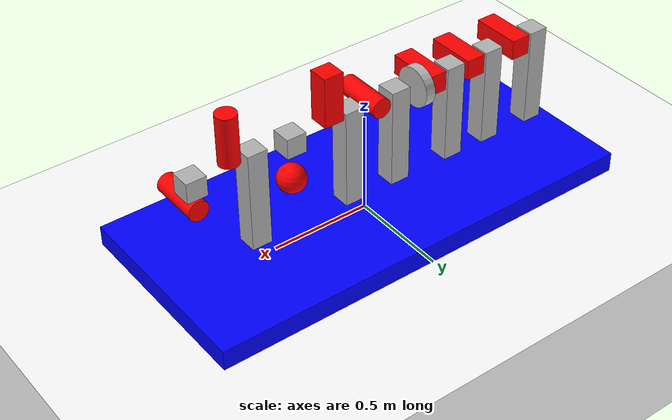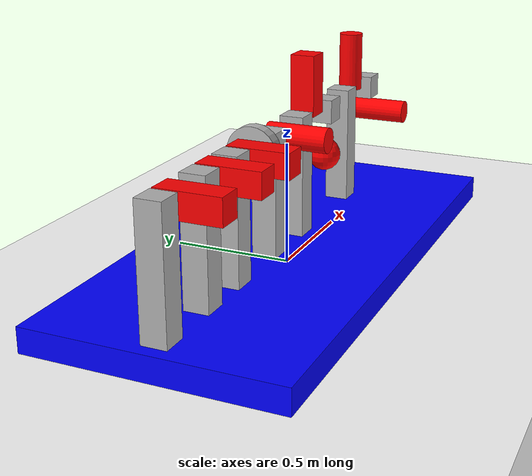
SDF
<?xml version="1.0" ?>
<sdf version="1.6">
  <world name="default">
    <physics name="fast" type="ignored">
      <real_time_factor>0</real_time_factor>
    </physics>

    <plugin
      filename="gz-sim-physics-system"
      name="gz::sim::systems::Physics">
    </plugin>
    <plugin
      filename="gz-sim-scene-broadcaster-system"
      name="gz::sim::systems::SceneBroadcaster">
    </plugin>

    <model name="ground_plane">
      <static>true</static>
      <link name="link">
        <pose>0 0 -0.5 0 0 0</pose>
        <collision name="collision">
          <geometry>
            <box>
              <size>100 100 1</size>
            </box>
          </geometry>
          <surface>
            <friction>
              <ode>
                <mu>100</mu>
                <mu2>50</mu2>
              </ode>
            </friction>
          </surface>
        </collision>
        <visual name="visual">
          <cast_shadows>false</cast_shadows>
          <geometry>
            <box>
              <size>100 100 1</size>
            </box>
          </geometry>
          <material>
            <ambient>1 1 1 1</ambient>
            <diffuse>1 1 1 1</diffuse>
            <specular>1 1 1 1</specular>
          </material>
        </visual>
      </link>
    </model>
    <model name="demo_joint_types">
        <!-- A Heavy base keeps the joints from falling over -->
        <link name="heavy_base">
            <!-- position the base such that the bottom touches the floor -->
            <pose>0 0 0.05 0 0 0</pose>
            <inertial>
                <mass>100</mass> <!-- kg -->
                <inertia>
                    <!-- (mass / 12) * (y*y + z*z) -->
                    <ixx>8.4167</ixx>
                    <ixy>0</ixy>
                    <ixz>0</ixz>
                    <!-- (mass / 12) * (x*x + z*z) -->
                    <iyy>40.417</iyy>
                    <iyz>0</iyz>
                    <!-- (mass / 12) * (y*y + x*x) -->
                    <izz>48.667</izz>
                </inertia>
            </inertial>
            <!-- Same geometry as visual -->
            <collision name="heavy_base_collision">
                <geometry>
                    <box>
                        <size>2.2 1 0.1</size>
                    </box>
                </geometry>
            </collision>
            <!-- Same geometry as collision -->
            <visual name="heavy_base_visual">
                <geometry>
                    <box>
                        <size>2.2 1 0.1</size>
                    </box>
                </geometry>
                <material>
                  <ambient>0 0 1 1</ambient>
                  <diffuse>0 0 1 1</diffuse>
                  <specular>0 0 1 1</specular>
                </material>
            </visual>
        </link>

        <!-- ****************************************
             revolute joint demo
             **************************************** -->
        <link name="revolute_base">
            <!-- Put the bottom of the child on top of the parent
                 z = 0.5 * revolute_base_sz_z + heavy_base_sz_z
                 x = put it near revolute label on heavy base
                 -->
            <pose >-.72 0 0.35 0 0 0</pose>
            <inertial>
                <inertia>
                    <!-- (mass / 12) * (y*y + z*z) -->
                    <ixx>0.021667</ixx>
                    <ixy>0</ixy>
                    <ixz>0</ixz>
                    <!-- (mass / 12) * (x*x + z*z) -->
                    <iyy>0.021667</iyy>
                    <iyz>0</iyz>
                    <!-- (mass / 12) * (y*y + x*x) -->
                    <izz>0.0016667</izz>
                </inertia>
            </inertial>
            <!-- Same geometry as visual -->
            <collision name="revolute_base_collision">
                <geometry>
                    <box>
                        <size>0.1 0.1 0.5</size>
                    </box>
                </geometry>
            </collision>
            <!-- Same geometry as collision -->
            <visual name="revolute_base_visual">
                <geometry>
                    <box>
                        <size>0.1 0.1 0.5</size>
                    </box>
                </geometry>
                <material>
                  <ambient>0.7 0.7 0.7 1</ambient>
                  <diffuse>0.7 0.7 0.7 1</diffuse>
                  <specular>0.7 0.7 0.7 1</specular>
                </material>
            </visual>
        </link>

        <joint name="revolute_base_to_heavy_base" type="fixed">
            <parent>heavy_base</parent>
            <child>revolute_base</child>
        </joint>

        <link name="revolute_arm">
            <pose >-.61 -0.075 0.55 0 0 0</pose>
            <inertial>
                <inertia>
                    <!-- (mass / 12) * (y*y + z*z) -->
                    <ixx>0.0060417</ixx>
                    <ixy>0</ixy>
                    <ixz>0</ixz>
                    <!-- (mass / 12) * (x*x + z*z) -->
                    <iyy>0.0016667</iyy>
                    <iyz>0</iyz>
                    <!-- (mass / 12) * (y*y + x*x) -->
                    <izz>0.0060417</izz>
                </inertia>
            </inertial>
            <!-- Same geometry as visual -->
            <collision name="revolute_arm_collision">
                <geometry>
                    <box>
                        <size>0.1 0.25 0.1</size>
                    </box>
                </geometry>
            </collision>
            <!-- Same geometry as collision -->
            <visual name="revolute_arm_visual">
                <geometry>
                    <box>
                        <size>0.1 0.25 0.1</size>
                    </box>
                </geometry>
                <material>
                  <ambient>1 0 0 1</ambient>
                  <diffuse>1 0 0 1</diffuse>
                  <specular>1 0 0 1</specular>
                </material>
            </visual>
        </link>

        <joint name="revolute_demo" type="revolute">
            <parent>revolute_base</parent>
            <child>revolute_arm</child>
            <axis>
                <xyz>1 0 0</xyz>
                <limit>
                  <lower>-3.14</lower>
                  <upper>3.14</upper>
                </limit>
            </axis>
            <!-- Move the joint to the size a bit to be more like an arm
                 y = 0.5 * relative_arm_sz_y - fudge(0.05) -->
            <pose>0 0.075 0 0 0 0</pose>
        </joint>

        <!-- ****************************************
             gearbox joint demo
             **************************************** -->
        <link name="gearbox_base">
            <!-- Put the bottom of the child on top of the parent
                 z = 0.5 * gearbox_base_sz_z + heavy_base_sz_z
                 x = put it near gearbox label on heavy base
                 -->
            <pose >-.49 0 0.35 0 0 0</pose>
            <inertial>
                <inertia>
                    <!-- (mass / 12) * (y*y + z*z) -->
                    <ixx>0.021667</ixx>
                    <ixy>0</ixy>
                    <ixz>0</ixz>
                    <!-- (mass / 12) * (x*x + z*z) -->
                    <iyy>0.021667</iyy>
                    <iyz>0</iyz>
                    <!-- (mass / 12) * (y*y + x*x) -->
                    <izz>0.0016667</izz>
                </inertia>
            </inertial>
            <!-- Same geometry as visual -->
            <collision name="gearbox_base_collision">
                <geometry>
                    <box>
                        <size>0.1 0.1 0.5</size>
                    </box>
                </geometry>
            </collision>
            <!-- Same geometry as collision -->
            <visual name="gearbox_base_visual">
                <geometry>
                    <box>
                        <size>0.1 0.1 0.5</size>
                    </box>
                </geometry>
                <material>
                  <ambient>0.7 0.7 0.7 1</ambient>
                  <diffuse>0.7 0.7 0.7 1</diffuse>
                  <specular>0.7 0.7 0.7 1</specular>
                </material>
            </visual>
        </link>

        <joint name="gearbox_base_to_heavy_base" type="fixed">
            <parent>heavy_base</parent>
            <child>gearbox_base</child>
        </joint>

        <!-- The reference body for the gearbox -->
        <link name="gearbox_input">
            <pose >-.38 -0.075 0.55 0 0 0</pose>
            <inertial>
                <inertia>
                    <!-- (mass / 12) * (y*y + z*z) -->
                    <ixx>0.0060417</ixx>
                    <ixy>0</ixy>
                    <ixz>0</ixz>
                    <!-- (mass / 12) * (x*x + z*z) -->
                    <iyy>0.0016667</iyy>
                    <iyz>0</iyz>
                    <!-- (mass / 12) * (y*y + x*x) -->
                    <izz>0.0060417</izz>
                </inertia>
            </inertial>
            <!-- Same geometry as visual -->
            <collision name="gearbox_input_collision">
                <geometry>
                    <box>
                        <size>0.1 0.25 0.1</size>
                    </box>
                </geometry>
            </collision>
            <!-- Same geometry as collision -->
            <visual name="gearbox_input_visual">
                <geometry>
                    <box>
                        <size>0.1 0.25 0.1</size>
                    </box>
                </geometry>
                <material>
                  <ambient>1 0 0 1</ambient>
                  <diffuse>1 0 0 1</diffuse>
                  <specular>1 0 0 1</specular>
                </material>
            </visual>
        </link>
        <!-- The output of the gearbox is a free spinning cylinder -->
        <link name="gearbox_output">
            <gravity>0</gravity>
            <pose >-.3 0.0 0.55 0 1.5708 0</pose>
            <inertial>
                <mass>0.1</mass> <!-- kg -->
                <inertia>
                    <!-- (mass / 12) * (3 * radius * radius + length * length) -->
                    <ixx>0.00027083</ixx>
                    <ixy>0</ixy>
                    <ixz>0</ixz>
                    <!-- (mass / 12) * (3 * radius * radius + length * length) -->
                    <iyy>0.00027083</iyy>
                    <iyz>0</iyz>
                    <!-- mass * radius * radius * 0.5 -->
                    <izz>0.0005</izz>
                </inertia>
            </inertial>
            <!-- Same geometry as visual -->
            <collision name="gearbox_output_collision">
                <geometry>
                    <cylinder>
                        <radius>0.1</radius>
                        <length>0.05</length>
                    </cylinder>
                </geometry>
            </collision>
            <!-- Same geometry as collision -->
            <visual name="gearbox_output_visual">
                <geometry>
                    <cylinder>
                        <radius>0.1</radius>
                        <length>0.05</length>
                    </cylinder>
                </geometry>
            </visual>
        </link>

        <!-- Gearbox links revolute joints, so create a couple revolute joints -->
        <joint name="gearbox_input_joint" type="revolute">
            <parent>gearbox_base</parent>
            <child>gearbox_input</child>
            <axis>
                <xyz>1 0 0</xyz>
            </axis>
            <pose>0 0.075 0 0 0 0</pose>
        </joint>
        <joint name="gearbox_output_joint" type="revolute">
            <parent>gearbox_base</parent>
            <child>gearbox_output</child>
            <axis>
                <xyz>0 0 1</xyz>
            </axis>
            <pose>0 0 0 0 0 0</pose>
        </joint>
        <joint name="gearbox_demo" type="gearbox">
            <parent>gearbox_input</parent>
            <child>gearbox_output</child>
            <gearbox_reference_body>gearbox_base</gearbox_reference_body>
            <gearbox_ratio>5</gearbox_ratio>
            <!-- input axis (relative to child) -->
            <axis>
                <xyz>0 0 1</xyz>
            </axis>
            <!-- output axis (relative to child) -->
            <axis2>
                <xyz>0 0 1</xyz>
                <limit>
                  <lower>-1e16</lower>
                  <upper>1e16</upper>
                </limit>
            </axis2>
        </joint>
        <!-- ****************************************
             revolute2 joint demo
             **************************************** -->
        <link name="revolute2_base">
            <!-- Put the bottom of the child on top of the parent-->
            <pose >-.17 0 0.35 0 0 0</pose>
            <inertial>
                <inertia>
                    <!-- (mass / 12) * (y*y + z*z) -->
                    <ixx>0.021667</ixx>
                    <ixy>0</ixy>
                    <ixz>0</ixz>
                    <!-- (mass / 12) * (x*x + z*z) -->
                    <iyy>0.021667</iyy>
                    <iyz>0</iyz>
                    <!-- (mass / 12) * (y*y + x*x) -->
                    <izz>0.0016667</izz>
                </inertia>
            </inertial>
            <!-- Same geometry as visual -->
            <collision name="revolute2_base_collision">
                <geometry>
                    <box>
                        <size>0.1 0.1 0.5</size>
                    </box>
                </geometry>
            </collision>
            <!-- Same geometry as collision -->
            <visual name="revolute2_base_visual">
                <geometry>
                    <box>
                        <size>0.1 0.1 0.5</size>
                    </box>
                </geometry>
                <material>
                  <ambient>0.7 0.7 0.7 1</ambient>
                  <diffuse>0.7 0.7 0.7 1</diffuse>
                  <specular>0.7 0.7 0.7 1</specular>
                </material>
            </visual>
        </link>

        <joint name="revolute2_base_to_heavy_base" type="fixed">
            <parent>heavy_base</parent>
            <child>revolute2_base</child>
        </joint>

        <link name="revolute2_arm">
            <!-- Put the arm near the top of the base
                 -->
            <pose >-.06 -0.075 0.55 1.5708 0 0</pose>
            <inertial>
                <inertia>
                    <!-- (mass / 12) * (3 * radius * radius + length * length) -->
                    <ixx>0.0058333</ixx>
                    <ixy>0</ixy>
                    <ixz>0</ixz>
                    <!-- (mass / 12) * (3 * radius * radius + length * length) -->
                    <iyy>0.0058333</iyy>
                    <iyz>0</iyz>
                    <!-- mass * radius * radius * 0.5 -->
                    <izz>0.00125</izz>
                </inertia>
                <!-- offset inertia as a trick to get movement from gravity -->
                <pose >-.1 -0.1 0.1 0 0 0</pose>
            </inertial>
            <!-- Same geometry as visual -->
            <collision name="revolute2_arm_collision">
                <geometry>
                    <cylinder>
                        <radius>0.05</radius>
                        <length>0.25</length>
                    </cylinder>
                </geometry>
            </collision>
            <!-- Same geometry as collision -->
            <visual name="revolute2_arm_visual">
                <geometry>
                    <cylinder>
                        <radius>0.05</radius>
                        <length>0.25</length>
                    </cylinder>
                </geometry>
                <material>
                  <ambient>1 0 0 1</ambient>
                  <diffuse>1 0 0 1</diffuse>
                  <specular>1 0 0 1</specular>
                </material>
            </visual>
        </link>

        <joint name="revolute2_demo" type="revolute2">
            <parent>revolute2_base</parent>
            <child>revolute2_arm</child>
            <axis>
                <xyz>1 0 0</xyz>
            </axis>
            <axis2>
                <xyz>0 1 0</xyz>
                <limit>
                  <lower>-1e16</lower>
                  <upper>1e16</upper>
                </limit>
            </axis2>
            <pose>0 0 -0.075  0 0 0</pose>
        </joint>
        <!-- ****************************************
             prismatic joint demo
             **************************************** -->
        <link name="prismatic_base">
            <!-- Put the bottom of base on top of the heavy base -->
            <pose >0.09 0 0.35 0 0 0</pose>
            <inertial>
                <inertia>
                    <!-- (mass / 12) * (y*y + z*z) -->
                    <ixx>0.021667</ixx>
                    <ixy>0</ixy>
                    <ixz>0</ixz>
                    <!-- (mass / 12) * (x*x + z*z) -->
                    <iyy>0.021667</iyy>
                    <iyz>0</iyz>
                    <!-- (mass / 12) * (y*y + x*x) -->
                    <izz>0.0016667</izz>
                </inertia>
            </inertial>
            <!-- Same geometry as visual -->
            <collision name="prismatic_base_collision">
                <geometry>
                    <box>
                        <size>0.1 0.1 0.5</size>
                    </box>
                </geometry>
            </collision>
            <!-- Same geometry as collision -->
            <visual name="prismatic_base_visual">
                <geometry>
                    <box>
                        <size>0.1 0.1 0.5</size>
                    </box>
                </geometry>
                <material>
                  <ambient>0.7 0.7 0.7 1</ambient>
                  <diffuse>0.7 0.7 0.7 1</diffuse>
                  <specular>0.7 0.7 0.7 1</specular>
                </material>
            </visual>
        </link>

        <joint name="prismatic_base_to_heavy_base" type="fixed">
            <parent>heavy_base</parent>
            <child>prismatic_base</child>
        </joint>

        <link name="prismatic_slide">
            <!-- Put the slide near the top of the base -->
            <pose >0.2 0 0.70 0 0 0</pose>
            <inertial>
                <inertia>
                    <!-- (mass / 12) * (y*y + z*z) -->
                    <ixx>0.0060417</ixx>
                    <ixy>0</ixy>
                    <ixz>0</ixz>
                    <!-- (mass / 12) * (x*x + z*z) -->
                    <iyy>0.0060417</iyy>
                    <iyz>0</iyz>
                    <!-- (mass / 12) * (y*y + x*x) -->
                    <izz>0.0016667</izz>
                </inertia>
            </inertial>
            <!-- Same geometry as visual -->
            <collision name="prismatic_slide_collision">
                <geometry>
                    <box>
                        <size>0.1 0.1 0.25</size>
                    </box>
                </geometry>
            </collision>
            <!-- Same geometry as collision -->
            <visual name="prismatic_slide_visual">
                <geometry>
                    <box>
                        <size>0.1 0.1 0.25</size>
                    </box>
                </geometry>
                <material>
                  <ambient>1 0 0 1</ambient>
                  <diffuse>1 0 0 1</diffuse>
                  <specular>1 0 0 1</specular>
                </material>
            </visual>
        </link>

        <joint name="prismatic_demo" type="prismatic">
            <parent>prismatic_base</parent>
            <child>prismatic_slide</child>
            <axis>
                <xyz>0 0 1</xyz>
                <!-- Make it springy to keep the demo moving -->
                <limit>
                    <lower>-0.25</lower>
                    <upper>0.25</upper>
                </limit>
                <dynamics>
                    <spring_stiffness>100</spring_stiffness>
                </dynamics>
            </axis>
        </joint>
        <!-- ****************************************
             ball joint demo
             **************************************** -->
        <link name="ball_socket">
            <!-- make the socket float in the sky -->
            <pose >0.4 0 0.55 0 0 0</pose>
            <inertial>
                <inertia>
                    <!-- (mass / 12) * (y*y + z*z) -->
                    <ixx>0.0016667</ixx>
                    <ixy>0</ixy>
                    <ixz>0</ixz>
                    <!-- (mass / 12) * (x*x + z*z) -->
                    <iyy>0.0016667</iyy>
                    <iyz>0</iyz>
                    <!-- (mass / 12) * (y*y + x*x) -->
                    <izz>0.0016667</izz>
                </inertia>
            </inertial>
            <!-- Same geometry as visual -->
            <collision name="ball_socket_collision">
                <geometry>
                    <box>
                        <size>0.1 0.1 0.1</size>
                    </box>
                </geometry>
            </collision>
            <!-- Same geometry as collision -->
            <visual name="ball_socket_visual">
                <geometry>
                    <box>
                        <size>0.1 0.1 0.1</size>
                    </box>
                </geometry>
                <material>
                  <ambient>0.7 0.7 0.7 1</ambient>
                  <diffuse>0.7 0.7 0.7 1</diffuse>
                  <specular>0.7 0.7 0.7 1</specular>
                </material>
            </visual>
        </link>

        <joint name="ball_socket_to_heavy_base" type="fixed">
            <parent>heavy_base</parent>
            <child>ball_socket</child>
        </joint>

        <link name="ball_ball">
            <!-- Put the ball just under the socket -->
            <pose >0.4 0 0.35 0 0 0</pose>
            <inertial>
                <inertia>
                    <!-- (2 * mass * radius * radius) / 5 -->
                    <ixx>0.00196</ixx>
                    <!-- fudge it a bit to get movement on two axis from gravity alone -->
                    <ixy>0.00</ixy>
                    <ixz>0.00</ixz>
                    <!-- (2 * mass * radius * radius) / 5 -->
                    <iyy>0.00196</iyy>
                    <iyz>0.00</iyz>
                    <!-- (2 * mass * radius * radius) / 5 -->
                    <izz>0.00196</izz>
                </inertia>
                <!-- offset interia as a trick to get movement from gravity -->
                <pose >0.1 -0.1 0.1 0 0 0</pose>
            </inertial>
            <!-- Same geometry as visual -->
            <collision name="ball_ball_collision">
                <geometry>
                    <sphere>
                        <radius>0.07</radius>
                    </sphere>
                </geometry>
            </collision>
            <!-- Same geometry as collision -->
            <visual name="ball_ball_visual">
                <geometry>
                    <sphere>
                        <radius>0.07</radius>
                    </sphere>
                </geometry>
                <material>
                  <ambient>1 0 0 1</ambient>
                  <diffuse>1 0 0 1</diffuse>
                  <specular>1 0 0 1</specular>
                </material>
            </visual>
        </link>

        <joint name="ball_demo" type="ball">
            <parent>ball_socket</parent>
            <child>ball_ball</child>
        </joint>

        <!-- ****************************************
             screw joint demo
             **************************************** -->
        <link name="screw_base">
            <!-- Put the bottom of base on top of the heavy base -->
            <pose >0.6 0 0.35 0 0 0</pose>
            <inertial>
                <inertia>
                    <!-- (mass / 12) * (y*y + z*z) -->
                    <ixx>0.021667</ixx>
                    <ixy>0</ixy>
                    <ixz>0</ixz>
                    <!-- (mass / 12) * (x*x + z*z) -->
                    <iyy>0.021667</iyy>
                    <iyz>0</iyz>
                    <!-- (mass / 12) * (y*y + x*x) -->
                    <izz>0.0016667</izz>
                </inertia>
            </inertial>
            <!-- Same geometry as visual -->
            <collision name="screw_base_collision">
                <geometry>
                    <box>
                        <size>0.1 0.1 0.5</size>
                    </box>
                </geometry>
            </collision>
            <!-- Same geometry as collision -->
            <visual name="screw_base_visual">
                <geometry>
                    <box>
                        <size>0.1 0.1 0.5</size>
                    </box>
                </geometry>
                <material>
                  <ambient>0.7 0.7 0.7 1</ambient>
                  <diffuse>0.7 0.7 0.7 1</diffuse>
                  <specular>0.7 0.7 0.7 1</specular>
                </material>
            </visual>
        </link>

        <joint name="screw_base_to_heavy_base" type="fixed">
            <parent>heavy_base</parent>
            <child>screw_base</child>
        </joint>

        <link name="screw_thread">
            <!-- Put the thread near the top of the base -->
            <pose >0.71 0 0.70 0 0 0</pose>
            <inertial>
                <inertia>
                    <!-- (mass / 12) * (3 * radius * radius + length * length) -->
                    <ixx>0.0058333</ixx>
                    <ixy>0</ixy>
                    <ixz>0</ixz>
                    <!-- (mass / 12) * (3 * radius * radius + length * length) -->
                    <iyy>0.0058333</iyy>
                    <iyz>0</iyz>
                    <!-- mass * radius * radius * 0.5 -->
                    <izz>0.00125</izz>
                </inertia>
            </inertial>
            <!-- Same geometry as visual -->
            <collision name="screw_thread_collision">
                <geometry>
                    <cylinder>
                        <radius>0.05</radius>
                        <length>0.25</length>
                    </cylinder>
                </geometry>
            </collision>
            <!-- Same geometry as collision -->
            <visual name="screw_thread_visual">
                <geometry>
                    <cylinder>
                        <radius>0.05</radius>
                        <length>0.25</length>
                    </cylinder>
                </geometry>
                <material>
                  <ambient>1 0 0 1</ambient>
                  <diffuse>1 0 0 1</diffuse>
                  <specular>1 0 0 1</specular>
                </material>
            </visual>
        </link>

        <joint name="screw_demo" type="screw">
            <parent>screw_base</parent>
            <child>screw_thread</child>
            <thread_pitch>20</thread_pitch>
            <axis>
                <xyz>0 0 1</xyz>
                <!-- Make it springy to keep the demo moving -->
                <dynamics>
                    <spring_stiffness>0.2</spring_stiffness>
                </dynamics>
                <limit>
                  <lower>-1e16</lower>
                  <upper>1e16</upper>
                </limit>
            </axis>
        </joint>

        <!-- ****************************************
             universal joint demo
             **************************************** -->
        <link name="universal_base">
            <!-- make the base float in the sky -->
            <pose >0.9 0 0.55 0 0 0</pose>
            <inertial>
                <inertia>
                    <!-- (mass / 12) * (y*y + z*z) -->
                    <ixx>0.0016667</ixx>
                    <ixy>0</ixy>
                    <ixz>0</ixz>
                    <!-- (mass / 12) * (x*x + z*z) -->
                    <iyy>0.0016667</iyy>
                    <iyz>0</iyz>
                    <!-- (mass / 12) * (y*y + x*x) -->
                    <izz>0.0016667</izz>
                </inertia>
            </inertial>
            <!-- Same geometry as visual -->
            <collision name="universal_base_collision">
                <geometry>
                    <box>
                        <size>0.1 0.1 0.1</size>
                    </box>
                </geometry>
            </collision>
            <!-- Same geometry as collision -->
            <visual name="universal_base_visual">
                <geometry>
                    <box>
                        <size>0.1 0.1 0.1</size>
                    </box>
                </geometry>
                <material>
                  <ambient>0.7 0.7 0.7 1</ambient>
                  <diffuse>0.7 0.7 0.7 1</diffuse>
                  <specular>0.7 0.7 0.7 1</specular>
                </material>
            </visual>
        </link>

        <joint name="universal_base_to_heavy_base" type="fixed">
            <parent>heavy_base</parent>
            <child>universal_base</child>
        </joint>

        <link name="universal_arm">
            <!-- Put the shaft just under the base -->
            <pose >0.9 -0.075 0.44 1.5708 0 0</pose>
            <inertial>
                <inertia>
                    <!-- (mass / 12) * (3 * radius * radius + length * length) -->
                    <ixx>0.0058333</ixx>
                    <ixy>0</ixy>
                    <ixz>0</ixz>
                    <!-- (mass / 12) * (3 * radius * radius + length * length) -->
                    <iyy>0.0058333</iyy>
                    <iyz>0</iyz>
                    <!-- mass * radius * radius * 0.5 -->
                    <izz>0.00125</izz>
                </inertia>
                <!-- offset interia as a trick to get movement from gravity -->
                <pose >-0.02 0.02 0 0 0 0</pose>
            </inertial>
            <!-- Same geometry as visual -->
            <collision name="universal_shaft_collision">
                <geometry>
                    <cylinder>
                        <radius>0.05</radius>
                        <length>0.25</length>
                    </cylinder>
                </geometry>
            </collision>
            <!-- Same geometry as collision -->
            <visual name="universal_shaft_visual">
                <geometry>
                    <cylinder>
                        <radius>0.05</radius>
                        <length>0.25</length>
                    </cylinder>
                </geometry>
                <material>
                  <ambient>1 0 0 1</ambient>
                  <diffuse>1 0 0 1</diffuse>
                  <specular>1 0 0 1</specular>
                </material>
            </visual>
        </link>

        <joint name="universal_demo" type="universal">
            <parent>universal_base</parent>
            <child>universal_arm</child>
            <pose>0 0 -0.075 0 0 0</pose>
            <axis>
              <xyz>1 0 0</xyz>
            </axis>
            <axis2>
              <xyz>0 1 0</xyz>
                <limit>
                  <lower>-1e16</lower>
                  <upper>1e16</upper>
                </limit>
            </axis2>
        </joint>

        <!-- ****************************************
             fixed joint demo
             **************************************** -->
        <link name="fixed_base">
            <!-- Put the bottom of base on top of the heavy base -->
            <pose >-1 0 0.35 0 0 0</pose>
            <inertial>
                <inertia>
                    <!-- (mass / 12) * (y*y + z*z) -->
                    <ixx>0.021667</ixx>
                    <ixy>0</ixy>
                    <ixz>0</ixz>
                    <!-- (mass / 12) * (x*x + z*z) -->
                    <iyy>0.021667</iyy>
                    <iyz>0</iyz>
                    <!-- (mass / 12) * (y*y + x*x) -->
                    <izz>0.0016667</izz>
                </inertia>
            </inertial>
            <!-- Same geometry as visual -->
            <collision name="fixed_base_collision">
                <geometry>
                    <box>
                        <size>0.1 0.1 0.5</size>
                    </box>
                </geometry>
            </collision>
            <!-- Same geometry as collision -->
            <visual name="fixed_base_visual">
                <geometry>
                    <box>
                        <size>0.1 0.1 0.5</size>
                    </box>
                </geometry>
                <material>
                  <ambient>0.7 0.7 0.7 1</ambient>
                  <diffuse>0.7 0.7 0.7 1</diffuse>
                  <specular>0.7 0.7 0.7 1</specular>
                </material>
            </visual>
        </link>

        <link name="fixed_arm">
            <!-- Put the arm near the top of the base -->
            <pose >-.89 -0.075 0.55 0 0 0</pose>
            <inertial>
                <inertia>
                    <!-- (mass / 12) * (y*y + z*z) -->
                    <ixx>0.0060417</ixx>
                    <ixy>0</ixy>
                    <ixz>0</ixz>
                    <!-- (mass / 12) * (x*x + z*z) -->
                    <iyy>0.0016667</iyy>
                    <iyz>0</iyz>
                    <!-- (mass / 12) * (y*y + x*x) -->
                    <izz>0.0060417</izz>
                </inertia>
            </inertial>
            <!-- Same geometry as visual -->
            <collision name="fixed_arm_collision">
                <geometry>
                    <box>
                        <size>0.1 0.25 0.1</size>
                    </box>
                </geometry>
            </collision>
            <!-- Same geometry as collision -->
            <visual name="fixed_arm_visual">
                <geometry>
                    <box>
                        <size>0.1 0.25 0.1</size>
                    </box>
                </geometry>
                <material>
                  <ambient>1 0 0 1</ambient>
                  <diffuse>1 0 0 1</diffuse>
                  <specular>1 0 0 1</specular>
                </material>
            </visual>
        </link>

        <joint name="fixed_base_to_heavy_base" type="fixed">
            <parent>heavy_base</parent>
            <child>fixed_base</child>
        </joint>

        <joint name="fixed_demo" type="fixed">
            <parent>fixed_base</parent>
            <child>fixed_arm</child>
        </joint>
    </model>
  </world>
</sdf>
